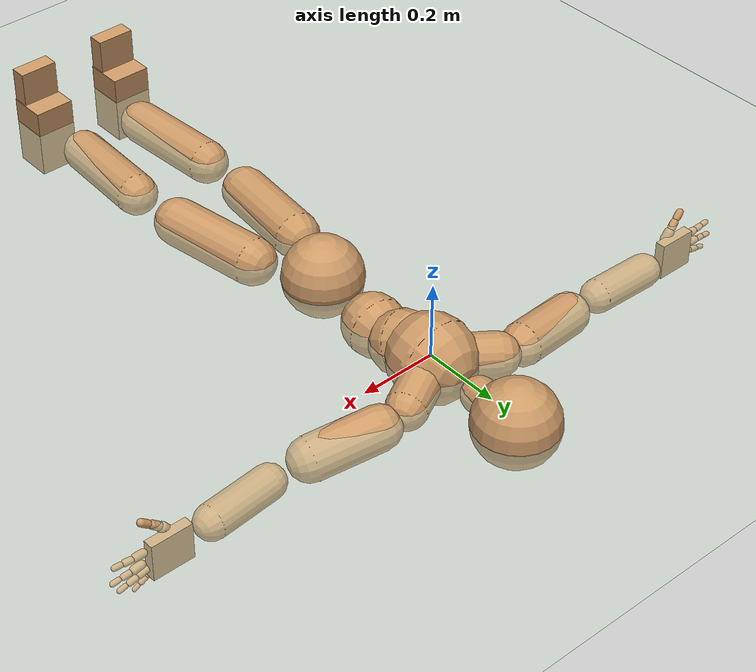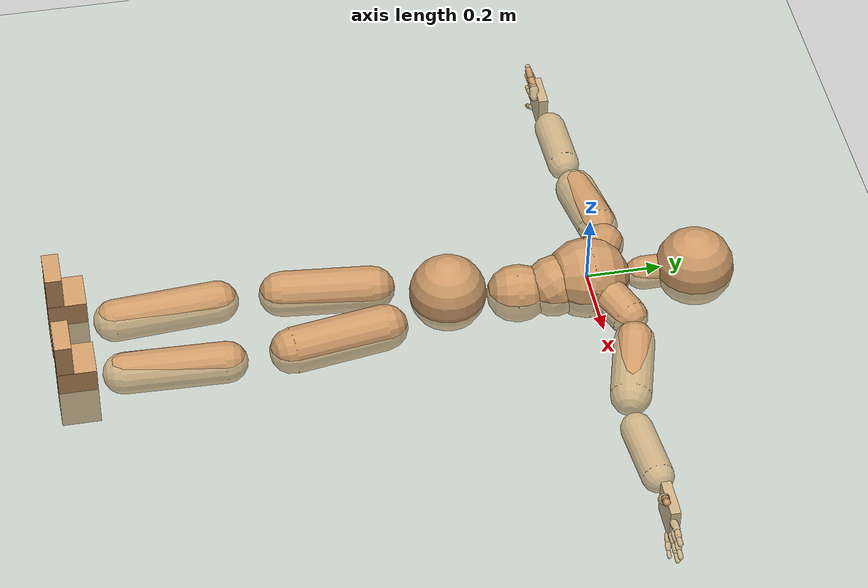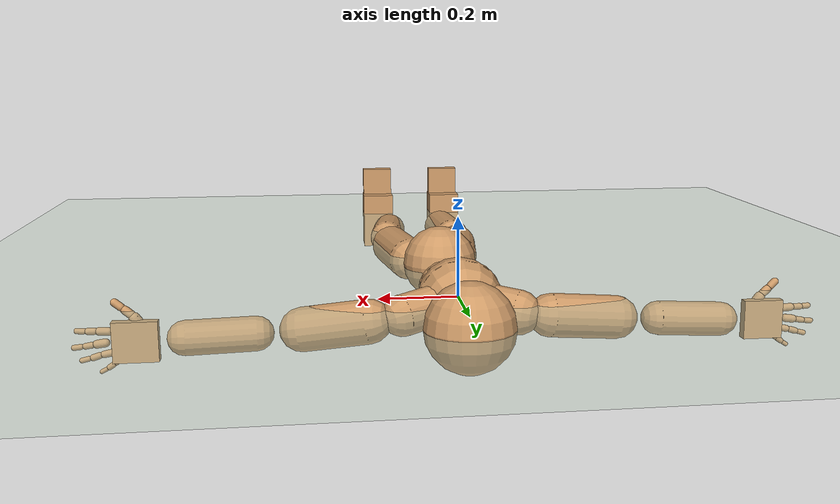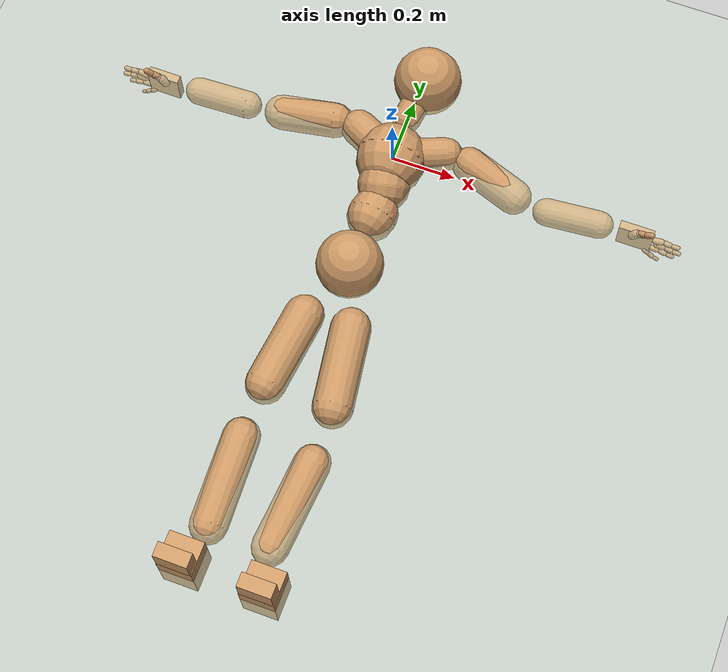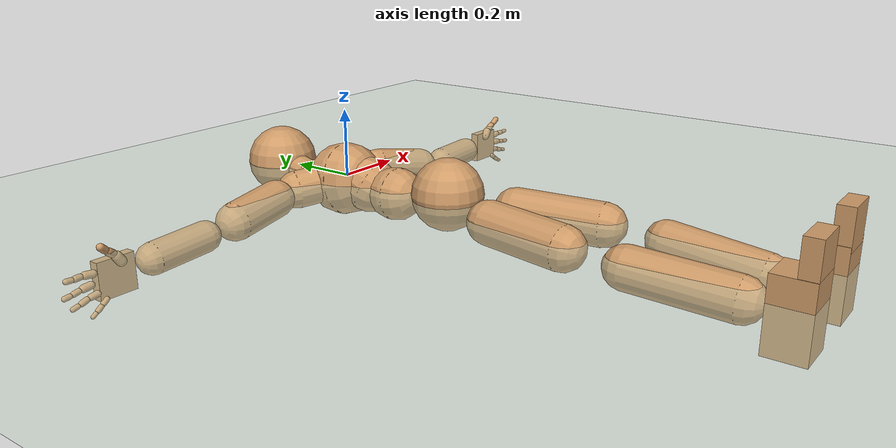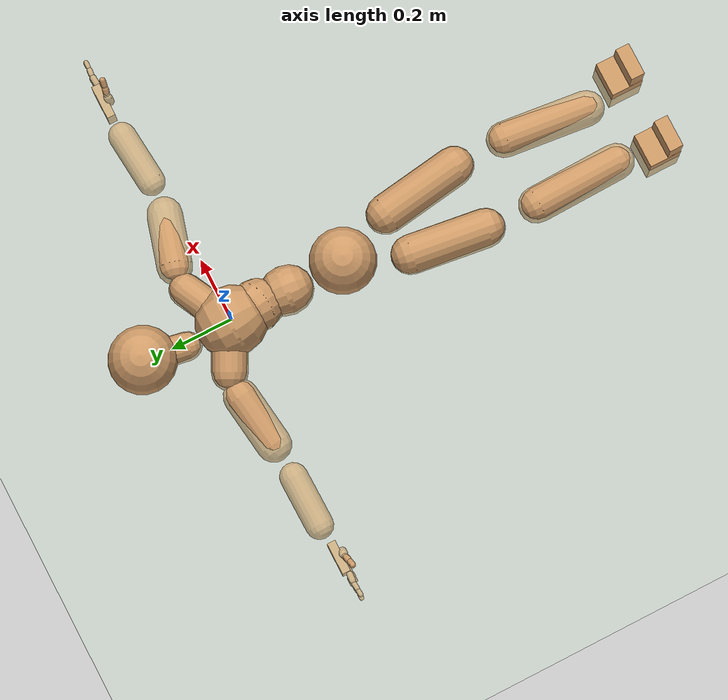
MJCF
<mujoco model="humanoid">
  <compiler coordinate="local"/>
  <default>
    <joint damping="0.0" armature="0.01" stiffness="0.0" limited="true"/>
    <geom conaffinity="1" condim="3" contype="7" margin="0.001" rgba="0.8 0.6 .4 1"/>
  </default>
  <asset>
    <texture type="skybox" builtin="gradient" rgb1=".4 .5 .6" rgb2="0 0 0" width="100" height="100"/>
    <texture builtin="flat" height="1278" mark="cross" markrgb="1 1 1" name="texgeom" random="0.01" rgb1="0.8 0.6 0.4" rgb2="0.8 0.6 0.4" type="cube" width="127"/>
    <texture builtin="checker" height="100" name="texplane" rgb1="0 0 0" rgb2="0.8 0.8 0.8" type="2d" width="100"/>
    <material name="MatPlane" reflectance="0.5" shininess="1" specular="1" texrepeat="60 60" texture="texplane"/>
    <material name="geom" texture="texgeom" texuniform="true"/>
  </asset>
  <worldbody>
    <light cutoff="100" diffuse="1 1 1" dir="-0 0 -1.3" directional="true" exponent="1" pos="0 0 1.3" specular=".1 .1 .1"/>
    <geom conaffinity="1" condim="3" name="floor" pos="0 0 0" rgba="0.8 0.9 0.8 1" size="100 100 .2" type="plane" material="MatPlane"/>
    <body name="Pelvis" pos="0.0028 -0.3762 0.0086">
      <freejoint name="Pelvis"/>
      <geom type="sphere" contype="1" conaffinity="1" density="4629.6296296296305" size="0.1025" pos="0.0000 0.0000 0.0000" name="Pelvis"/>
      <body name="L_Hip" pos="0.0579 -0.0974 -0.0258">
        <joint name="L_Hip_x" type="hinge" pos="0 0 0" axis="1 0 0" user="250 2.5 1 500 10 2" armature="0.01" range="-90.0000 90.0000" damping="0" stiffness="0"/>
        <joint name="L_Hip_y" type="hinge" pos="0 0 0" axis="0 1 0" user="250 2.5 1 500 10 2" armature="0.01" range="-90.0000 90.0000" damping="0" stiffness="0"/>
        <joint name="L_Hip_z" type="hinge" pos="0 0 0" axis="0 0 1" user="250 2.5 1 500 10 2" armature="0.01" range="-90.0000 90.0000" damping="0" stiffness="0"/>
        <geom type="capsule" contype="1" conaffinity="1" density="2040.816327" fromto="0.0123 -0.0831 -0.0012 0.0492 -0.3323 -0.0047" size="0.0612" name="L_Hip"/>
        <body name="L_Knee" pos="0.0615 -0.4154 -0.0058">
          <joint name="L_Knee_x" type="hinge" pos="0 0 0" axis="1 0 0" user="250 2.5 1 500 10 2" armature="0.01" range="-180.0000 180.0000" damping="0" stiffness="0"/>
          <joint name="L_Knee_y" type="hinge" pos="0 0 0" axis="0 1 0" user="250 2.5 1 500 10 2" armature="0.01" range="-5.6250 5.6250" damping="0" stiffness="0"/>
          <joint name="L_Knee_z" type="hinge" pos="0 0 0" axis="0 0 1" user="250 2.5 1 500 10 2" armature="0.01" range="-5.6250 5.6250" damping="0" stiffness="0"/>
          <geom type="capsule" contype="1" conaffinity="1" density="1234.567901" fromto="-0.0087 -0.0893 -0.0064 -0.0348 -0.3570 -0.0255" size="0.0548" name="L_Knee"/>
          <body name="L_Ankle" pos="-0.0435 -0.4463 -0.0318">
            <joint name="L_Ankle_x" type="hinge" pos="0 0 0" axis="1 0 0" user="150 2.5 1 500 10 2" armature="0.01" range="-90.0000 90.0000" damping="0" stiffness="0"/>
            <joint name="L_Ankle_y" type="hinge" pos="0 0 0" axis="0 1 0" user="150 2.5 1 500 10 2" armature="0.01" range="-90.0000 90.0000" damping="0" stiffness="0"/>
            <joint name="L_Ankle_z" type="hinge" pos="0 0 0" axis="0 0 1" user="150 2.5 1 500 10 2" armature="0.01" range="-90.0000 90.0000" damping="0" stiffness="0"/>
            <geom type="box" density="450.710296" pos="0.0433 -0.0333 0.0260" size="0.053 0.0507 0.0933" quat="1.0000 0.0000 0.0000 0.0000" name="L_Ankle"/>
            <body name="L_Toe" pos="0.0502 -0.066 0.129">
              <joint name="L_Toe_x" type="hinge" pos="0 0 0" axis="1 0 0" user="150 1 1 500 1 1" armature="0.01" range="-90.0000 90.0000" damping="0" stiffness="0"/>
              <joint name="L_Toe_y" type="hinge" pos="0 0 0" axis="0 1 0" user="150 1 1 500 1 1" armature="0.01" range="-45.0000 45.0000" damping="0" stiffness="0"/>
              <joint name="L_Toe_z" type="hinge" pos="0 0 0" axis="0 0 1" user="150 1 1 500 1 1" armature="0.01" range="-45.0000 45.0000" damping="0" stiffness="0"/>
              <geom type="box" density="420.494333" pos="-0.0068 0.0038 0.0282" size="0.0508 0.0218 0.0538" quat="1.0000 0.0000 0.0000 0.0000" name="L_Toe"/>
            </body>
          </body>
        </body>
      </body>
      <body name="R_Hip" pos="-0.0628 -0.1102 -0.02">
        <joint name="R_Hip_x" type="hinge" pos="0 0 0" axis="1 0 0" user="250 2.5 1 500 10 2" armature="0.01" range="-90.0000 90.0000" damping="0" stiffness="0"/>
        <joint name="R_Hip_y" type="hinge" pos="0 0 0" axis="0 1 0" user="250 2.5 1 500 10 2" armature="0.01" range="-90.0000 90.0000" damping="0" stiffness="0"/>
        <joint name="R_Hip_z" type="hinge" pos="0 0 0" axis="0 0 1" user="250 2.5 1 500 10 2" armature="0.01" range="-90.0000 90.0000" damping="0" stiffness="0"/>
        <geom type="capsule" contype="1" conaffinity="1" density="2040.816327" fromto="-0.0101 -0.0793 -0.0028 -0.0404 -0.3172 -0.0113" size="0.0604" name="R_Hip"/>
        <body name="R_Knee" pos="-0.0506 -0.3965 -0.0141">
          <joint name="R_Knee_x" type="hinge" pos="0 0 0" axis="1 0 0" user="250 2.5 1 500 10 2" armature="0.01" range="-180.0000 180.0000" damping="0" stiffness="0"/>
          <joint name="R_Knee_y" type="hinge" pos="0 0 0" axis="0 1 0" user="250 2.5 1 500 10 2" armature="0.01" range="-5.6250 5.6250" damping="0" stiffness="0"/>
          <joint name="R_Knee_z" type="hinge" pos="0 0 0" axis="0 0 1" user="250 2.5 1 500 10 2" armature="0.01" range="-5.6250 5.6250" damping="0" stiffness="0"/>
          <geom type="capsule" contype="1" conaffinity="1" density="1234.567901" fromto="0.0029 -0.0911 -0.0039 0.0115 -0.3644 -0.0156" size="0.0564" name="R_Knee"/>
          <body name="R_Ankle" pos="0.0144 -0.4555 -0.0195">
            <joint name="R_Ankle_x" type="hinge" pos="0 0 0" axis="1 0 0" user="150 1 1 500 10 2" armature="0.01" range="-90.0000 90.0000" damping="0" stiffness="0"/>
            <joint name="R_Ankle_y" type="hinge" pos="0 0 0" axis="0 1 0" user="150 1 1 500 10 2" armature="0.01" range="-90.0000 90.0000" damping="0" stiffness="0"/>
            <joint name="R_Ankle_z" type="hinge" pos="0 0 0" axis="0 0 1" user="150 1 1 500 10 2" armature="0.01" range="-90.0000 90.0000" damping="0" stiffness="0"/>
            <geom type="box" density="450.704319" pos="-0.0259 -0.0302 0.0162" size="0.053 0.0507 0.0933" quat="1.0000 0.0000 0.0000 0.0000" name="R_Ankle"/>
            <body name="R_Toe" pos="-0.0411 -0.0656 0.1298">
              <joint name="R_Toe_x" type="hinge" pos="0 0 0" axis="1 0 0" user="150 1 1 500 1 1" armature="0.01" range="-90.0000 90.0000" damping="0" stiffness="0"/>
              <joint name="R_Toe_y" type="hinge" pos="0 0 0" axis="0 1 0" user="150 1 1 500 1 1" armature="0.01" range="-45.0000 45.0000" damping="0" stiffness="0"/>
              <joint name="R_Toe_z" type="hinge" pos="0 0 0" axis="0 0 1" user="150 1 1 500 1 1" armature="0.01" range="-45.0000 45.0000" damping="0" stiffness="0"/>
              <geom type="box" density="420.507686" pos="0.0152 0.0066 0.0176" size="0.0507 0.0218 0.0538" quat="1.0000 0.0000 0.0000 0.0000" name="R_Toe"/>
            </body>
          </body>
        </body>
      </body>
      <body name="Torso" pos="-0.0028 0.1175 -0.0302">
        <joint name="Torso_x" type="hinge" pos="0 0 0" axis="1 0 0" user="500 5 1 500 10 2" armature="0.01" range="-60.0000 60.0000" damping="0" stiffness="0"/>
        <joint name="Torso_y" type="hinge" pos="0 0 0" axis="0 1 0" user="500 5 1 500 10 2" armature="0.01" range="-60.0000 60.0000" damping="0" stiffness="0"/>
        <joint name="Torso_z" type="hinge" pos="0 0 0" axis="0 0 1" user="500 5 1 500 10 2" armature="0.01" range="-60.0000 60.0000" damping="0" stiffness="0"/>
        <geom type="capsule" contype="1" conaffinity="1" density="2040.816327" fromto="0.0046 0.0640 -0.0030 0.0056 0.0782 -0.0036" size="0.0761" name="Torso"/>
        <body name="Spine" pos="0.0103 0.1422 -0.0066">
          <joint name="Spine_x" type="hinge" pos="0 0 0" axis="1 0 0" user="500 5 1 500 10 2" armature="0.01" range="-60.0000 60.0000" damping="0" stiffness="0"/>
          <joint name="Spine_y" type="hinge" pos="0 0 0" axis="0 1 0" user="500 5 1 500 10 2" armature="0.01" range="-60.0000 60.0000" damping="0" stiffness="0"/>
          <joint name="Spine_z" type="hinge" pos="0 0 0" axis="0 0 1" user="500 5 1 500 10 2" armature="0.01" range="-60.0000 60.0000" damping="0" stiffness="0"/>
          <geom type="capsule" contype="1" conaffinity="1" density="2040.816327" fromto="-0.0053 0.0262 0.0119 -0.0065 0.0320 0.0146" size="0.0807" name="Spine"/>
          <body name="Chest" pos="-0.0118 0.0582 0.0265">
            <joint name="Chest_x" type="hinge" pos="0 0 0" axis="1 0 0" user="500 5 1 500 10 2" armature="0.01" range="-60.0000 60.0000" damping="0" stiffness="0"/>
            <joint name="Chest_y" type="hinge" pos="0 0 0" axis="0 1 0" user="500 5 1 500 10 2" armature="0.01" range="-60.0000 60.0000" damping="0" stiffness="0"/>
            <joint name="Chest_z" type="hinge" pos="0 0 0" axis="0 0 1" user="500 5 1 500 10 2" armature="0.01" range="-60.0000 60.0000" damping="0" stiffness="0"/>
            <geom type="capsule" contype="1" conaffinity="1" density="2040.816327" fromto="-0.0021 0.0533 -0.0066 -0.0026 0.0652 -0.0081" size="0.1069" name="Chest"/>
            <body name="Neck" pos="-0.0125 0.1759 -0.0265">
              <joint name="Neck_x" type="hinge" pos="0 0 0" axis="1 0 0" user="150 1 1 250 50 4" armature="0.01" range="-180.0000 180.0000" damping="0" stiffness="0"/>
              <joint name="Neck_y" type="hinge" pos="0 0 0" axis="0 1 0" user="150 1 1 250 50 4" armature="0.01" range="-180.0000 180.0000" damping="0" stiffness="0"/>
              <joint name="Neck_z" type="hinge" pos="0 0 0" axis="0 0 1" user="150 1 1 250 50 4" armature="0.01" range="-180.0000 180.0000" damping="0" stiffness="0"/>
              <geom type="capsule" contype="1" conaffinity="1" density="1000" fromto="0.0052 0.0343 0.0057 0.0209 0.1373 0.0228" size="0.0445" name="Neck"/>
              <body name="Head" pos="0.0261 0.1716 0.0284">
                <joint name="Head_x" type="hinge" pos="0 0 0" axis="1 0 0" user="150 1 1 250 50 4" armature="0.01" range="-90.0000 90.0000" damping="0" stiffness="0"/>
                <joint name="Head_y" type="hinge" pos="0 0 0" axis="0 1 0" user="150 1 1 250 50 4" armature="0.01" range="-90.0000 90.0000" damping="0" stiffness="0"/>
                <joint name="Head_z" type="hinge" pos="0 0 0" axis="0 0 1" user="150 1 1 250 50 4" armature="0.01" range="-90.0000 90.0000" damping="0" stiffness="0"/>
                <geom type="sphere" contype="1" conaffinity="1" density="1000" size="0.1053" pos="0.0000 0.0000 0.0000" name="Head"/>
              </body>
            </body>
            <body name="L_Thorax" pos="0.0473 0.0903 -0.0053">
              <joint name="L_Thorax_x" type="hinge" pos="0 0 0" axis="1 0 0" user="200 2 1 500 50 4" armature="0.01" range="-180.0000 180.0000" damping="0" stiffness="0"/>
              <joint name="L_Thorax_y" type="hinge" pos="0 0 0" axis="0 1 0" user="200 2 1 500 50 4" armature="0.01" range="-180.0000 180.0000" damping="0" stiffness="0"/>
              <joint name="L_Thorax_z" type="hinge" pos="0 0 0" axis="0 0 1" user="200 2 1 500 50 4" armature="0.01" range="-180.0000 180.0000" damping="0" stiffness="0"/>
              <geom type="capsule" contype="1" conaffinity="1" density="1000" fromto="0.0249 0.0121 -0.0037 0.0997 0.0483 -0.0148" size="0.0511" name="L_Thorax"/>
              <body name="L_Shoulder" pos="0.1246 0.0604 -0.0185">
                <joint name="L_Shoulder_x" type="hinge" pos="0 0 0" axis="1 0 0" user="200 2 1 500 50 4" armature="0.01" range="-180.0000 180.0000" damping="0" stiffness="0"/>
                <joint name="L_Shoulder_y" type="hinge" pos="0 0 0" axis="0 1 0" user="200 2 1 500 50 4" armature="0.01" range="-180.0000 180.0000" damping="0" stiffness="0"/>
                <joint name="L_Shoulder_z" type="hinge" pos="0 0 0" axis="0 0 1" user="200 2 1 500 50 4" armature="0.01" range="-180.0000 180.0000" damping="0" stiffness="0"/>
                <geom type="capsule" contype="1" conaffinity="1" density="1000" fromto="0.0535 -0.0151 -0.0087 0.2141 -0.0604 -0.0349" size="0.0543" name="L_Shoulder"/>
                <body name="L_Elbow" pos="0.2676 -0.0755 -0.0437">
                  <joint name="L_Elbow_x" type="hinge" pos="0 0 0" axis="1 0 0" user="150 1 1 150 10 2" armature="0.01" range="-720.0000 720.0000" damping="0" stiffness="0"/>
                  <joint name="L_Elbow_y" type="hinge" pos="0 0 0" axis="0 1 0" user="150 1 1 150 10 2" armature="0.01" range="-720.0000 720.0000" damping="0" stiffness="0"/>
                  <joint name="L_Elbow_z" type="hinge" pos="0 0 0" axis="0 0 1" user="150 1 1 150 10 2" armature="0.01" range="-720.0000 720.0000" damping="0" stiffness="0"/>
                  <geom type="capsule" contype="1" conaffinity="1" density="1000" fromto="0.0553 0.0049 -0.0001 0.2213 0.0198 -0.0004" size="0.0425" name="L_Elbow"/>
                  <body name="L_Wrist" pos="0.2766 0.0247 -0.0005">
                    <joint name="L_Wrist_x" type="hinge" pos="0 0 0" axis="1 0 0" user="100 1 1 150 1 1" armature="0.01" range="-180.0000 180.0000" damping="0" stiffness="0"/>
                    <joint name="L_Wrist_y" type="hinge" pos="0 0 0" axis="0 1 0" user="100 1 1 150 1 1" armature="0.01" range="-180.0000 180.0000" damping="0" stiffness="0"/>
                    <joint name="L_Wrist_z" type="hinge" pos="0 0 0" axis="0 0 1" user="100 1 1 150 1 1" armature="0.01" range="-180.0000 180.0000" damping="0" stiffness="0"/>
                    <geom type="box" density="1209.74811" pos="0.0581 -0.0017 -0.0031" size="0.0535 0.0131 0.0492" quat="1.0000 0.0000 0.0000 0.0000" name="L_Wrist"/>
                    <body name="L_Index1" pos="0.1129 -0.0087 0.0208">
                      <joint name="L_Index1_x" type="hinge" pos="0 0 0" axis="1 0 0" user="100 10 1 150" armature="0.01" range="-180.0000 180.0000" damping="0" stiffness="0"/>
                      <joint name="L_Index1_y" type="hinge" pos="0 0 0" axis="0 1 0" user="100 10 1 150" armature="0.01" range="-180.0000 180.0000" damping="0" stiffness="0"/>
                      <joint name="L_Index1_z" type="hinge" pos="0 0 0" axis="0 0 1" user="100 10 1 150" armature="0.01" range="-180.0000 180.0000" damping="0" stiffness="0"/>
                      <geom type="capsule" contype="1" conaffinity="1" density="1000" fromto="0.0068 0.0005 0.0006 0.0272 0.0020 0.0024" size="0.0098" name="L_Index1"/>
                      <body name="L_Index2" pos="0.034 0.0025 0.0029">
                        <joint name="L_Index2_x" type="hinge" pos="0 0 0" axis="1 0 0" user="100 10 1 150" armature="0.01" range="-180.0000 180.0000" damping="0" stiffness="0"/>
                        <joint name="L_Index2_y" type="hinge" pos="0 0 0" axis="0 1 0" user="100 10 1 150" armature="0.01" range="-180.0000 180.0000" damping="0" stiffness="0"/>
                        <joint name="L_Index2_z" type="hinge" pos="0 0 0" axis="0 0 1" user="100 10 1 150" armature="0.01" range="-180.0000 180.0000" damping="0" stiffness="0"/>
                        <geom type="capsule" contype="1" conaffinity="1" density="1000" fromto="0.0048 -0.0005 -0.0000 0.0192 -0.0021 -0.0002" size="0.0081" name="L_Index2"/>
                        <body name="L_Index3" pos="0.024 -0.0026 -0.0002">
                          <joint name="L_Index3_x" type="hinge" pos="0 0 0" axis="1 0 0" user="100 10 1 150" armature="0.01" range="-180.0000 180.0000" damping="0" stiffness="0"/>
                          <joint name="L_Index3_y" type="hinge" pos="0 0 0" axis="0 1 0" user="100 10 1 150" armature="0.01" range="-180.0000 180.0000" damping="0" stiffness="0"/>
                          <joint name="L_Index3_z" type="hinge" pos="0 0 0" axis="0 0 1" user="100 10 1 150" armature="0.01" range="-180.0000 180.0000" damping="0" stiffness="0"/>
                          <geom type="capsule" contype="1" conaffinity="1" density="1000" fromto="0.0052 -0.0001 0.0004 0.0208 -0.0005 0.0014" size="0.0069" name="L_Index3"/>
                        </body>
                      </body>
                    </body>
                    <body name="L_Middle1" pos="0.1212 -0.0063 -0.0043">
                      <joint name="L_Middle1_x" type="hinge" pos="0 0 0" axis="1 0 0" user="100 10 1 150" armature="0.01" range="-180.0000 180.0000" damping="0" stiffness="0"/>
                      <joint name="L_Middle1_y" type="hinge" pos="0 0 0" axis="0 1 0" user="100 10 1 150" armature="0.01" range="-180.0000 180.0000" damping="0" stiffness="0"/>
                      <joint name="L_Middle1_z" type="hinge" pos="0 0 0" axis="0 0 1" user="100 10 1 150" armature="0.01" range="-180.0000 180.0000" damping="0" stiffness="0"/>
                      <geom type="capsule" contype="1" conaffinity="1" density="1000" fromto="0.0065 0.0002 -0.0009 0.0261 0.0006 -0.0034" size="0.01" name="L_Middle1"/>
                      <body name="L_Middle2" pos="0.0326 0.0008 -0.0043">
                        <joint name="L_Middle2_x" type="hinge" pos="0 0 0" axis="1 0 0" user="100 10 1 150" armature="0.01" range="-180.0000 180.0000" damping="0" stiffness="0"/>
                        <joint name="L_Middle2_y" type="hinge" pos="0 0 0" axis="0 1 0" user="100 10 1 150" armature="0.01" range="-180.0000 180.0000" damping="0" stiffness="0"/>
                        <joint name="L_Middle2_z" type="hinge" pos="0 0 0" axis="0 0 1" user="100 10 1 150" armature="0.01" range="-180.0000 180.0000" damping="0" stiffness="0"/>
                        <geom type="capsule" contype="1" conaffinity="1" density="1000" fromto="0.0050 -0.0005 -0.0009 0.0200 -0.0018 -0.0036" size="0.0075" name="L_Middle2"/>
                        <body name="L_Middle3" pos="0.025 -0.0023 -0.0045">
                          <joint name="L_Middle3_x" type="hinge" pos="0 0 0" axis="1 0 0" user="100 10 1 150" armature="0.01" range="-180.0000 180.0000" damping="0" stiffness="0"/>
                          <joint name="L_Middle3_y" type="hinge" pos="0 0 0" axis="0 1 0" user="100 10 1 150" armature="0.01" range="-180.0000 180.0000" damping="0" stiffness="0"/>
                          <joint name="L_Middle3_z" type="hinge" pos="0 0 0" axis="0 0 1" user="100 10 1 150" armature="0.01" range="-180.0000 180.0000" damping="0" stiffness="0"/>
                          <geom type="capsule" contype="1" conaffinity="1" density="1000" fromto="0.0054 -0.0001 -0.0005 0.0216 -0.0002 -0.0020" size="0.0066" name="L_Middle3"/>
                        </body>
                      </body>
                    </body>
                    <body name="L_Pinky1" pos="0.0941 -0.015 -0.0469">
                      <joint name="L_Pinky1_x" type="hinge" pos="0 0 0" axis="1 0 0" user="100 10 1 150" armature="0.01" range="-180.0000 180.0000" damping="0" stiffness="0"/>
                      <joint name="L_Pinky1_y" type="hinge" pos="0 0 0" axis="0 1 0" user="100 10 1 150" armature="0.01" range="-180.0000 180.0000" damping="0" stiffness="0"/>
                      <joint name="L_Pinky1_z" type="hinge" pos="0 0 0" axis="0 0 1" user="100 10 1 150" armature="0.01" range="-180.0000 180.0000" damping="0" stiffness="0"/>
                      <geom type="capsule" contype="1" conaffinity="1" density="1000" fromto="0.0034 -0.0003 -0.0025 0.0136 -0.0010 -0.0102" size="0.0071" name="L_Pinky1"/>
                      <body name="L_Pinky2" pos="0.0171 -0.0013 -0.0127">
                        <joint name="L_Pinky2_x" type="hinge" pos="0 0 0" axis="1 0 0" user="100 10 1 150" armature="0.01" range="-180.0000 180.0000" damping="0" stiffness="0"/>
                        <joint name="L_Pinky2_y" type="hinge" pos="0 0 0" axis="0 1 0" user="100 10 1 150" armature="0.01" range="-180.0000 180.0000" damping="0" stiffness="0"/>
                        <joint name="L_Pinky2_z" type="hinge" pos="0 0 0" axis="0 0 1" user="100 10 1 150" armature="0.01" range="-180.0000 180.0000" damping="0" stiffness="0"/>
                        <geom type="capsule" contype="1" conaffinity="1" density="1000" fromto="0.0033 -0.0004 -0.0023 0.0134 -0.0015 -0.0094" size="0.0068" name="L_Pinky2"/>
                        <body name="L_Pinky3" pos="0.0167 -0.0019 -0.0117">
                          <joint name="L_Pinky3_x" type="hinge" pos="0 0 0" axis="1 0 0" user="100 10 1 150" armature="0.01" range="-180.0000 180.0000" damping="0" stiffness="0"/>
                          <joint name="L_Pinky3_y" type="hinge" pos="0 0 0" axis="0 1 0" user="100 10 1 150" armature="0.01" range="-180.0000 180.0000" damping="0" stiffness="0"/>
                          <joint name="L_Pinky3_z" type="hinge" pos="0 0 0" axis="0 0 1" user="100 10 1 150" armature="0.01" range="-180.0000 180.0000" damping="0" stiffness="0"/>
                          <geom type="capsule" contype="1" conaffinity="1" density="1000" fromto="0.0037 0.0000 -0.0019 0.0150 0.0001 -0.0078" size="0.0052" name="L_Pinky3"/>
                        </body>
                      </body>
                    </body>
                    <body name="L_Ring1" pos="0.1086 -0.0094 -0.0294">
                      <joint name="L_Ring1_x" type="hinge" pos="0 0 0" axis="1 0 0" user="100 10 1 150" armature="0.01" range="-180.0000 180.0000" damping="0" stiffness="0"/>
                      <joint name="L_Ring1_y" type="hinge" pos="0 0 0" axis="0 1 0" user="100 10 1 150" armature="0.01" range="-180.0000 180.0000" damping="0" stiffness="0"/>
                      <joint name="L_Ring1_z" type="hinge" pos="0 0 0" axis="0 0 1" user="100 10 1 150" armature="0.01" range="-180.0000 180.0000" damping="0" stiffness="0"/>
                      <geom type="capsule" contype="1" conaffinity="1" density="1000" fromto="0.0061 0.0003 -0.0011 0.0242 0.0012 -0.0045" size="0.0085" name="L_Ring1"/>
                      <body name="L_Ring2" pos="0.0303 0.0016 -0.0056">
                        <joint name="L_Ring2_x" type="hinge" pos="0 0 0" axis="1 0 0" user="100 10 1 150" armature="0.01" range="-180.0000 180.0000" damping="0" stiffness="0"/>
                        <joint name="L_Ring2_y" type="hinge" pos="0 0 0" axis="0 1 0" user="100 10 1 150" armature="0.01" range="-180.0000 180.0000" damping="0" stiffness="0"/>
                        <joint name="L_Ring2_z" type="hinge" pos="0 0 0" axis="0 0 1" user="100 10 1 150" armature="0.01" range="-180.0000 180.0000" damping="0" stiffness="0"/>
                        <geom type="capsule" contype="1" conaffinity="1" density="1000" fromto="0.0049 -0.0003 -0.0015 0.0195 -0.0013 -0.0061" size="0.0079" name="L_Ring2"/>
                        <body name="L_Ring3" pos="0.0244 -0.0017 -0.0076">
                          <joint name="L_Ring3_x" type="hinge" pos="0 0 0" axis="1 0 0" user="100 10 1 150" armature="0.01" range="-180.0000 180.0000" damping="0" stiffness="0"/>
                          <joint name="L_Ring3_y" type="hinge" pos="0 0 0" axis="0 1 0" user="100 10 1 150" armature="0.01" range="-180.0000 180.0000" damping="0" stiffness="0"/>
                          <joint name="L_Ring3_z" type="hinge" pos="0 0 0" axis="0 0 1" user="100 10 1 150" armature="0.01" range="-180.0000 180.0000" damping="0" stiffness="0"/>
                          <geom type="capsule" contype="1" conaffinity="1" density="1000" fromto="0.0053 0.0001 -0.0011 0.0211 0.0003 -0.0045" size="0.0062" name="L_Ring3"/>
                        </body>
                      </body>
                    </body>
                    <body name="L_Thumb1" pos="0.046 -0.0195 0.0281">
                      <joint name="L_Thumb1_x" type="hinge" pos="0 0 0" axis="1 0 0" user="100 10 1 150" armature="0.01" range="-180.0000 180.0000" damping="0" stiffness="0"/>
                      <joint name="L_Thumb1_y" type="hinge" pos="0 0 0" axis="0 1 0" user="100 10 1 150" armature="0.01" range="-180.0000 180.0000" damping="0" stiffness="0"/>
                      <joint name="L_Thumb1_z" type="hinge" pos="0 0 0" axis="0 0 1" user="100 10 1 150" armature="0.01" range="-180.0000 180.0000" damping="0" stiffness="0"/>
                      <geom type="capsule" contype="1" conaffinity="1" density="1000" fromto="0.0037 0.0002 0.0054 0.0149 0.0008 0.0216" size="0.0131" name="L_Thumb1"/>
                      <body name="L_Thumb2" pos="0.0186 0.001 0.027">
                        <joint name="L_Thumb2_x" type="hinge" pos="0 0 0" axis="1 0 0" user="100 10 1 150" armature="0.01" range="-180.0000 180.0000" damping="0" stiffness="0"/>
                        <joint name="L_Thumb2_y" type="hinge" pos="0 0 0" axis="0 1 0" user="100 10 1 150" armature="0.01" range="-180.0000 180.0000" damping="0" stiffness="0"/>
                        <joint name="L_Thumb2_z" type="hinge" pos="0 0 0" axis="0 0 1" user="100 10 1 150" armature="0.01" range="-180.0000 180.0000" damping="0" stiffness="0"/>
                        <geom type="capsule" contype="1" conaffinity="1" density="1000" fromto="0.0045 -0.0011 0.0033 0.0179 -0.0043 0.0133" size="0.0103" name="L_Thumb2"/>
                        <body name="L_Thumb3" pos="0.0224 -0.0054 0.0166">
                          <joint name="L_Thumb3_x" type="hinge" pos="0 0 0" axis="1 0 0" user="100 10 1 150" armature="0.01" range="-180.0000 180.0000" damping="0" stiffness="0"/>
                          <joint name="L_Thumb3_y" type="hinge" pos="0 0 0" axis="0 1 0" user="100 10 1 150" armature="0.01" range="-180.0000 180.0000" damping="0" stiffness="0"/>
                          <joint name="L_Thumb3_z" type="hinge" pos="0 0 0" axis="0 0 1" user="100 10 1 150" armature="0.01" range="-180.0000 180.0000" damping="0" stiffness="0"/>
                          <geom type="capsule" contype="1" conaffinity="1" density="1000" fromto="0.0049 -0.0007 0.0037 0.0195 -0.0027 0.0149" size="0.0094" name="L_Thumb3"/>
                        </body>
                      </body>
                    </body>
                  </body>
                </body>
              </body>
            </body>
            <body name="R_Thorax" pos="-0.0487 0.0892 -0.0122">
              <joint name="R_Thorax_x" type="hinge" pos="0 0 0" axis="1 0 0" user="200 2 1 150 10 2" armature="0.01" range="-180.0000 180.0000" damping="0" stiffness="0"/>
              <joint name="R_Thorax_y" type="hinge" pos="0 0 0" axis="0 1 0" user="200 2 1 150 10 2" armature="0.01" range="-180.0000 180.0000" damping="0" stiffness="0"/>
              <joint name="R_Thorax_z" type="hinge" pos="0 0 0" axis="0 0 1" user="200 2 1 150 10 2" armature="0.01" range="-180.0000 180.0000" damping="0" stiffness="0"/>
              <geom type="capsule" contype="1" conaffinity="1" density="1000" fromto="-0.0216 0.0112 -0.0028 -0.0865 0.0449 -0.0113" size="0.0561" name="R_Thorax"/>
              <body name="R_Shoulder" pos="-0.1082 0.0561 -0.0142">
                <joint name="R_Shoulder_x" type="hinge" pos="0 0 0" axis="1 0 0" user="200 2 1 250 10 2" armature="0.01" range="-180.0000 180.0000" damping="0" stiffness="0"/>
                <joint name="R_Shoulder_y" type="hinge" pos="0 0 0" axis="0 1 0" user="200 2 1 250 10 2" armature="0.01" range="-180.0000 180.0000" damping="0" stiffness="0"/>
                <joint name="R_Shoulder_z" type="hinge" pos="0 0 0" axis="0 0 1" user="200 2 1 250 10 2" armature="0.01" range="-180.0000 180.0000" damping="0" stiffness="0"/>
                <geom type="capsule" contype="1" conaffinity="1" density="1000" fromto="-0.0571 -0.0076 -0.0056 -0.2284 -0.0303 -0.0226" size="0.0542" name="R_Shoulder"/>
                <body name="R_Elbow" pos="-0.2855 -0.0379 -0.0282">
                  <joint name="R_Elbow_x" type="hinge" pos="0 0 0" axis="1 0 0" user="150 1 1 150 10 2" armature="0.01" range="-720.0000 720.0000" damping="0" stiffness="0"/>
                  <joint name="R_Elbow_y" type="hinge" pos="0 0 0" axis="0 1 0" user="150 1 1 150 10 2" armature="0.01" range="-720.0000 720.0000" damping="0" stiffness="0"/>
                  <joint name="R_Elbow_z" type="hinge" pos="0 0 0" axis="0 0 1" user="150 1 1 150 10 2" armature="0.01" range="-720.0000 720.0000" damping="0" stiffness="0"/>
                  <geom type="capsule" contype="1" conaffinity="1" density="1000" fromto="-0.0546 -0.0008 -0.0028 -0.2184 -0.0033 -0.0112" size="0.0429" name="R_Elbow"/>
                  <body name="R_Wrist" pos="-0.273 -0.0042 -0.014">
                    <joint name="R_Wrist_x" type="hinge" pos="0 0 0" axis="1 0 0" user="100 1 1 150 1 1" armature="0.01" range="-180.0000 180.0000" damping="0" stiffness="0"/>
                    <joint name="R_Wrist_y" type="hinge" pos="0 0 0" axis="0 1 0" user="100 1 1 150 1 1" armature="0.01" range="-180.0000 180.0000" damping="0" stiffness="0"/>
                    <joint name="R_Wrist_z" type="hinge" pos="0 0 0" axis="0 0 1" user="100 1 1 150 1 1" armature="0.01" range="-180.0000 180.0000" damping="0" stiffness="0"/>
                    <geom type="box" density="1233.547171" pos="-0.0593 -0.0051 -0.0025" size="0.0505 0.0131 0.0492" quat="1.0000 0.0000 0.0000 0.0000" name="R_Wrist"/>
                    <body name="R_Index1" pos="-0.1107 -0.0121 0.0214">
                      <joint name="R_Index1_x" type="hinge" pos="0 0 0" axis="1 0 0" user="100 10 1 150" armature="0.01" range="-180.0000 180.0000" damping="0" stiffness="0"/>
                      <joint name="R_Index1_y" type="hinge" pos="0 0 0" axis="0 1 0" user="100 10 1 150" armature="0.01" range="-180.0000 180.0000" damping="0" stiffness="0"/>
                      <joint name="R_Index1_z" type="hinge" pos="0 0 0" axis="0 0 1" user="100 10 1 150" armature="0.01" range="-180.0000 180.0000" damping="0" stiffness="0"/>
                      <geom type="capsule" contype="1" conaffinity="1" density="1000" fromto="-0.0068 0.0005 0.0006 -0.0272 0.0020 0.0024" size="0.0098" name="R_Index1"/>
                      <body name="R_Index2" pos="-0.034 0.0025 0.0029">
                        <joint name="R_Index2_x" type="hinge" pos="0 0 0" axis="1 0 0" user="100 10 1 150" armature="0.01" range="-180.0000 180.0000" damping="0" stiffness="0"/>
                        <joint name="R_Index2_y" type="hinge" pos="0 0 0" axis="0 1 0" user="100 10 1 150" armature="0.01" range="-180.0000 180.0000" damping="0" stiffness="0"/>
                        <joint name="R_Index2_z" type="hinge" pos="0 0 0" axis="0 0 1" user="100 10 1 150" armature="0.01" range="-180.0000 180.0000" damping="0" stiffness="0"/>
                        <geom type="capsule" contype="1" conaffinity="1" density="1000" fromto="-0.0048 -0.0005 -0.0000 -0.0192 -0.0021 -0.0002" size="0.0081" name="R_Index2"/>
                        <body name="R_Index3" pos="-0.024 -0.0026 -0.0002">
                          <joint name="R_Index3_x" type="hinge" pos="0 0 0" axis="1 0 0" user="100 10 1 150" armature="0.01" range="-180.0000 180.0000" damping="0" stiffness="0"/>
                          <joint name="R_Index3_y" type="hinge" pos="0 0 0" axis="0 1 0" user="100 10 1 150" armature="0.01" range="-180.0000 180.0000" damping="0" stiffness="0"/>
                          <joint name="R_Index3_z" type="hinge" pos="0 0 0" axis="0 0 1" user="100 10 1 150" armature="0.01" range="-180.0000 180.0000" damping="0" stiffness="0"/>
                          <geom type="capsule" contype="1" conaffinity="1" density="1000" fromto="-0.0044 -0.0001 0.0004 -0.0176 -0.0005 0.0014" size="0.0072" name="R_Index3"/>
                        </body>
                      </body>
                    </body>
                    <body name="R_Middle1" pos="-0.1191 -0.0097 -0.0038">
                      <joint name="R_Middle1_x" type="hinge" pos="0 0 0" axis="1 0 0" user="100 10 1 150" armature="0.01" range="-180.0000 180.0000" damping="0" stiffness="0"/>
                      <joint name="R_Middle1_y" type="hinge" pos="0 0 0" axis="0 1 0" user="100 10 1 150" armature="0.01" range="-180.0000 180.0000" damping="0" stiffness="0"/>
                      <joint name="R_Middle1_z" type="hinge" pos="0 0 0" axis="0 0 1" user="100 10 1 150" armature="0.01" range="-180.0000 180.0000" damping="0" stiffness="0"/>
                      <geom type="capsule" contype="1" conaffinity="1" density="1000" fromto="-0.0065 0.0002 -0.0009 -0.0261 0.0006 -0.0034" size="0.01" name="R_Middle1"/>
                      <body name="R_Middle2" pos="-0.0326 0.0008 -0.0043">
                        <joint name="R_Middle2_x" type="hinge" pos="0 0 0" axis="1 0 0" user="100 10 1 150" armature="0.01" range="-180.0000 180.0000" damping="0" stiffness="0"/>
                        <joint name="R_Middle2_y" type="hinge" pos="0 0 0" axis="0 1 0" user="100 10 1 150" armature="0.01" range="-180.0000 180.0000" damping="0" stiffness="0"/>
                        <joint name="R_Middle2_z" type="hinge" pos="0 0 0" axis="0 0 1" user="100 10 1 150" armature="0.01" range="-180.0000 180.0000" damping="0" stiffness="0"/>
                        <geom type="capsule" contype="1" conaffinity="1" density="1000" fromto="-0.0050 -0.0005 -0.0009 -0.0200 -0.0018 -0.0036" size="0.0075" name="R_Middle2"/>
                        <body name="R_Middle3" pos="-0.025 -0.0023 -0.0045">
                          <joint name="R_Middle3_x" type="hinge" pos="0 0 0" axis="1 0 0" user="100 10 1 150" armature="0.01" range="-180.0000 180.0000" damping="0" stiffness="0"/>
                          <joint name="R_Middle3_y" type="hinge" pos="0 0 0" axis="0 1 0" user="100 10 1 150" armature="0.01" range="-180.0000 180.0000" damping="0" stiffness="0"/>
                          <joint name="R_Middle3_z" type="hinge" pos="0 0 0" axis="0 0 1" user="100 10 1 150" armature="0.01" range="-180.0000 180.0000" damping="0" stiffness="0"/>
                          <geom type="capsule" contype="1" conaffinity="1" density="1000" fromto="-0.0046 -0.0001 -0.0005 -0.0184 -0.0002 -0.0020" size="0.0069" name="R_Middle3"/>
                        </body>
                      </body>
                    </body>
                    <body name="R_Pinky1" pos="-0.092 -0.0184 -0.0463">
                      <joint name="R_Pinky1_x" type="hinge" pos="0 0 0" axis="1 0 0" user="100 10 1 150" armature="0.01" range="-180.0000 180.0000" damping="0" stiffness="0"/>
                      <joint name="R_Pinky1_y" type="hinge" pos="0 0 0" axis="0 1 0" user="100 10 1 150" armature="0.01" range="-180.0000 180.0000" damping="0" stiffness="0"/>
                      <joint name="R_Pinky1_z" type="hinge" pos="0 0 0" axis="0 0 1" user="100 10 1 150" armature="0.01" range="-180.0000 180.0000" damping="0" stiffness="0"/>
                      <geom type="capsule" contype="1" conaffinity="1" density="1000" fromto="-0.0034 -0.0003 -0.0025 -0.0136 -0.0010 -0.0102" size="0.0071" name="R_Pinky1"/>
                      <body name="R_Pinky2" pos="-0.0171 -0.0013 -0.0127">
                        <joint name="R_Pinky2_x" type="hinge" pos="0 0 0" axis="1 0 0" user="100 10 1 150" armature="0.01" range="-180.0000 180.0000" damping="0" stiffness="0"/>
                        <joint name="R_Pinky2_y" type="hinge" pos="0 0 0" axis="0 1 0" user="100 10 1 150" armature="0.01" range="-180.0000 180.0000" damping="0" stiffness="0"/>
                        <joint name="R_Pinky2_z" type="hinge" pos="0 0 0" axis="0 0 1" user="100 10 1 150" armature="0.01" range="-180.0000 180.0000" damping="0" stiffness="0"/>
                        <geom type="capsule" contype="1" conaffinity="1" density="1000" fromto="-0.0033 -0.0004 -0.0023 -0.0134 -0.0015 -0.0094" size="0.0068" name="R_Pinky2"/>
                        <body name="R_Pinky3" pos="-0.0167 -0.0019 -0.0117">
                          <joint name="R_Pinky3_x" type="hinge" pos="0 0 0" axis="1 0 0" user="100 10 1 150" armature="0.01" range="-180.0000 180.0000" damping="0" stiffness="0"/>
                          <joint name="R_Pinky3_y" type="hinge" pos="0 0 0" axis="0 1 0" user="100 10 1 150" armature="0.01" range="-180.0000 180.0000" damping="0" stiffness="0"/>
                          <joint name="R_Pinky3_z" type="hinge" pos="0 0 0" axis="0 0 1" user="100 10 1 150" armature="0.01" range="-180.0000 180.0000" damping="0" stiffness="0"/>
                          <geom type="capsule" contype="1" conaffinity="1" density="1000" fromto="-0.0029 0.0000 -0.0019 -0.0118 0.0001 -0.0078" size="0.0055" name="R_Pinky3"/>
                        </body>
                      </body>
                    </body>
                    <body name="R_Ring1" pos="-0.1064 -0.0128 -0.0288">
                      <joint name="R_Ring1_x" type="hinge" pos="0 0 0" axis="1 0 0" user="100 10 1 150" armature="0.01" range="-180.0000 180.0000" damping="0" stiffness="0"/>
                      <joint name="R_Ring1_y" type="hinge" pos="0 0 0" axis="0 1 0" user="100 10 1 150" armature="0.01" range="-180.0000 180.0000" damping="0" stiffness="0"/>
                      <joint name="R_Ring1_z" type="hinge" pos="0 0 0" axis="0 0 1" user="100 10 1 150" armature="0.01" range="-180.0000 180.0000" damping="0" stiffness="0"/>
                      <geom type="capsule" contype="1" conaffinity="1" density="1000" fromto="-0.0061 0.0003 -0.0011 -0.0242 0.0012 -0.0045" size="0.0085" name="R_Ring1"/>
                      <body name="R_Ring2" pos="-0.0303 0.0016 -0.0056">
                        <joint name="R_Ring2_x" type="hinge" pos="0 0 0" axis="1 0 0" user="100 10 1 150" armature="0.01" range="-180.0000 180.0000" damping="0" stiffness="0"/>
                        <joint name="R_Ring2_y" type="hinge" pos="0 0 0" axis="0 1 0" user="100 10 1 150" armature="0.01" range="-180.0000 180.0000" damping="0" stiffness="0"/>
                        <joint name="R_Ring2_z" type="hinge" pos="0 0 0" axis="0 0 1" user="100 10 1 150" armature="0.01" range="-180.0000 180.0000" damping="0" stiffness="0"/>
                        <geom type="capsule" contype="1" conaffinity="1" density="1000" fromto="-0.0049 -0.0003 -0.0015 -0.0195 -0.0013 -0.0061" size="0.0079" name="R_Ring2"/>
                        <body name="R_Ring3" pos="-0.0244 -0.0017 -0.0076">
                          <joint name="R_Ring3_x" type="hinge" pos="0 0 0" axis="1 0 0" user="100 10 1 150" armature="0.01" range="-180.0000 180.0000" damping="0" stiffness="0"/>
                          <joint name="R_Ring3_y" type="hinge" pos="0 0 0" axis="0 1 0" user="100 10 1 150" armature="0.01" range="-180.0000 180.0000" damping="0" stiffness="0"/>
                          <joint name="R_Ring3_z" type="hinge" pos="0 0 0" axis="0 0 1" user="100 10 1 150" armature="0.01" range="-180.0000 180.0000" damping="0" stiffness="0"/>
                          <geom type="capsule" contype="1" conaffinity="1" density="1000" fromto="-0.0045 0.0001 -0.0011 -0.0179 0.0003 -0.0045" size="0.0064" name="R_Ring3"/>
                        </body>
                      </body>
                    </body>
                    <body name="R_Thumb1" pos="-0.0438 -0.0229 0.0287">
                      <joint name="R_Thumb1_x" type="hinge" pos="0 0 0" axis="1 0 0" user="100 10 1 150" armature="0.01" range="-180.0000 180.0000" damping="0" stiffness="0"/>
                      <joint name="R_Thumb1_y" type="hinge" pos="0 0 0" axis="0 1 0" user="100 10 1 150" armature="0.01" range="-180.0000 180.0000" damping="0" stiffness="0"/>
                      <joint name="R_Thumb1_z" type="hinge" pos="0 0 0" axis="0 0 1" user="100 10 1 150" armature="0.01" range="-180.0000 180.0000" damping="0" stiffness="0"/>
                      <geom type="capsule" contype="1" conaffinity="1" density="1000" fromto="-0.0037 0.0002 0.0054 -0.0149 0.0008 0.0216" size="0.0131" name="R_Thumb1"/>
                      <body name="R_Thumb2" pos="-0.0186 0.001 0.027">
                        <joint name="R_Thumb2_x" type="hinge" pos="0 0 0" axis="1 0 0" user="100 10 1 150" armature="0.01" range="-180.0000 180.0000" damping="0" stiffness="0"/>
                        <joint name="R_Thumb2_y" type="hinge" pos="0 0 0" axis="0 1 0" user="100 10 1 150" armature="0.01" range="-180.0000 180.0000" damping="0" stiffness="0"/>
                        <joint name="R_Thumb2_z" type="hinge" pos="0 0 0" axis="0 0 1" user="100 10 1 150" armature="0.01" range="-180.0000 180.0000" damping="0" stiffness="0"/>
                        <geom type="capsule" contype="1" conaffinity="1" density="1000" fromto="-0.0045 -0.0011 0.0033 -0.0179 -0.0043 0.0133" size="0.0103" name="R_Thumb2"/>
                        <body name="R_Thumb3" pos="-0.0224 -0.0054 0.0166">
                          <joint name="R_Thumb3_x" type="hinge" pos="0 0 0" axis="1 0 0" user="100 10 1 150" armature="0.01" range="-180.0000 180.0000" damping="0" stiffness="0"/>
                          <joint name="R_Thumb3_y" type="hinge" pos="0 0 0" axis="0 1 0" user="100 10 1 150" armature="0.01" range="-180.0000 180.0000" damping="0" stiffness="0"/>
                          <joint name="R_Thumb3_z" type="hinge" pos="0 0 0" axis="0 0 1" user="100 10 1 150" armature="0.01" range="-180.0000 180.0000" damping="0" stiffness="0"/>
                          <geom type="capsule" contype="1" conaffinity="1" density="1000" fromto="-0.0041 -0.0007 0.0037 -0.0163 -0.0027 0.0149" size="0.0096" name="R_Thumb3"/>
                        </body>
                      </body>
                    </body>
                  </body>
                </body>
              </body>
            </body>
          </body>
        </body>
      </body>
    </body>
  </worldbody>
  <actuator>
    <motor name="L_Hip_x" joint="L_Hip_x" gear="1"/>
    <motor name="L_Hip_y" joint="L_Hip_y" gear="1"/>
    <motor name="L_Hip_z" joint="L_Hip_z" gear="1"/>
    <motor name="L_Knee_x" joint="L_Knee_x" gear="1"/>
    <motor name="L_Knee_y" joint="L_Knee_y" gear="1"/>
    <motor name="L_Knee_z" joint="L_Knee_z" gear="1"/>
    <motor name="L_Ankle_x" joint="L_Ankle_x" gear="1"/>
    <motor name="L_Ankle_y" joint="L_Ankle_y" gear="1"/>
    <motor name="L_Ankle_z" joint="L_Ankle_z" gear="1"/>
    <motor name="L_Toe_x" joint="L_Toe_x" gear="1"/>
    <motor name="L_Toe_y" joint="L_Toe_y" gear="1"/>
    <motor name="L_Toe_z" joint="L_Toe_z" gear="1"/>
    <motor name="R_Hip_x" joint="R_Hip_x" gear="1"/>
    <motor name="R_Hip_y" joint="R_Hip_y" gear="1"/>
    <motor name="R_Hip_z" joint="R_Hip_z" gear="1"/>
    <motor name="R_Knee_x" joint="R_Knee_x" gear="1"/>
    <motor name="R_Knee_y" joint="R_Knee_y" gear="1"/>
    <motor name="R_Knee_z" joint="R_Knee_z" gear="1"/>
    <motor name="R_Ankle_x" joint="R_Ankle_x" gear="1"/>
    <motor name="R_Ankle_y" joint="R_Ankle_y" gear="1"/>
    <motor name="R_Ankle_z" joint="R_Ankle_z" gear="1"/>
    <motor name="R_Toe_x" joint="R_Toe_x" gear="1"/>
    <motor name="R_Toe_y" joint="R_Toe_y" gear="1"/>
    <motor name="R_Toe_z" joint="R_Toe_z" gear="1"/>
    <motor name="Torso_x" joint="Torso_x" gear="1"/>
    <motor name="Torso_y" joint="Torso_y" gear="1"/>
    <motor name="Torso_z" joint="Torso_z" gear="1"/>
    <motor name="Spine_x" joint="Spine_x" gear="1"/>
    <motor name="Spine_y" joint="Spine_y" gear="1"/>
    <motor name="Spine_z" joint="Spine_z" gear="1"/>
    <motor name="Chest_x" joint="Chest_x" gear="1"/>
    <motor name="Chest_y" joint="Chest_y" gear="1"/>
    <motor name="Chest_z" joint="Chest_z" gear="1"/>
    <motor name="Neck_x" joint="Neck_x" gear="1"/>
    <motor name="Neck_y" joint="Neck_y" gear="1"/>
    <motor name="Neck_z" joint="Neck_z" gear="1"/>
    <motor name="Head_x" joint="Head_x" gear="1"/>
    <motor name="Head_y" joint="Head_y" gear="1"/>
    <motor name="Head_z" joint="Head_z" gear="1"/>
    <motor name="L_Thorax_x" joint="L_Thorax_x" gear="1"/>
    <motor name="L_Thorax_y" joint="L_Thorax_y" gear="1"/>
    <motor name="L_Thorax_z" joint="L_Thorax_z" gear="1"/>
    <motor name="L_Shoulder_x" joint="L_Shoulder_x" gear="1"/>
    <motor name="L_Shoulder_y" joint="L_Shoulder_y" gear="1"/>
    <motor name="L_Shoulder_z" joint="L_Shoulder_z" gear="1"/>
    <motor name="L_Elbow_x" joint="L_Elbow_x" gear="1"/>
    <motor name="L_Elbow_y" joint="L_Elbow_y" gear="1"/>
    <motor name="L_Elbow_z" joint="L_Elbow_z" gear="1"/>
    <motor name="L_Wrist_x" joint="L_Wrist_x" gear="1"/>
    <motor name="L_Wrist_y" joint="L_Wrist_y" gear="1"/>
    <motor name="L_Wrist_z" joint="L_Wrist_z" gear="1"/>
    <motor name="L_Index1_x" joint="L_Index1_x" gear="1"/>
    <motor name="L_Index1_y" joint="L_Index1_y" gear="1"/>
    <motor name="L_Index1_z" joint="L_Index1_z" gear="1"/>
    <motor name="L_Index2_x" joint="L_Index2_x" gear="1"/>
    <motor name="L_Index2_y" joint="L_Index2_y" gear="1"/>
    <motor name="L_Index2_z" joint="L_Index2_z" gear="1"/>
    <motor name="L_Index3_x" joint="L_Index3_x" gear="1"/>
    <motor name="L_Index3_y" joint="L_Index3_y" gear="1"/>
    <motor name="L_Index3_z" joint="L_Index3_z" gear="1"/>
    <motor name="L_Middle1_x" joint="L_Middle1_x" gear="1"/>
    <motor name="L_Middle1_y" joint="L_Middle1_y" gear="1"/>
    <motor name="L_Middle1_z" joint="L_Middle1_z" gear="1"/>
    <motor name="L_Middle2_x" joint="L_Middle2_x" gear="1"/>
    <motor name="L_Middle2_y" joint="L_Middle2_y" gear="1"/>
    <motor name="L_Middle2_z" joint="L_Middle2_z" gear="1"/>
    <motor name="L_Middle3_x" joint="L_Middle3_x" gear="1"/>
    <motor name="L_Middle3_y" joint="L_Middle3_y" gear="1"/>
    <motor name="L_Middle3_z" joint="L_Middle3_z" gear="1"/>
    <motor name="L_Pinky1_x" joint="L_Pinky1_x" gear="1"/>
    <motor name="L_Pinky1_y" joint="L_Pinky1_y" gear="1"/>
    <motor name="L_Pinky1_z" joint="L_Pinky1_z" gear="1"/>
    <motor name="L_Pinky2_x" joint="L_Pinky2_x" gear="1"/>
    <motor name="L_Pinky2_y" joint="L_Pinky2_y" gear="1"/>
    <motor name="L_Pinky2_z" joint="L_Pinky2_z" gear="1"/>
    <motor name="L_Pinky3_x" joint="L_Pinky3_x" gear="1"/>
    <motor name="L_Pinky3_y" joint="L_Pinky3_y" gear="1"/>
    <motor name="L_Pinky3_z" joint="L_Pinky3_z" gear="1"/>
    <motor name="L_Ring1_x" joint="L_Ring1_x" gear="1"/>
    <motor name="L_Ring1_y" joint="L_Ring1_y" gear="1"/>
    <motor name="L_Ring1_z" joint="L_Ring1_z" gear="1"/>
    <motor name="L_Ring2_x" joint="L_Ring2_x" gear="1"/>
    <motor name="L_Ring2_y" joint="L_Ring2_y" gear="1"/>
    <motor name="L_Ring2_z" joint="L_Ring2_z" gear="1"/>
    <motor name="L_Ring3_x" joint="L_Ring3_x" gear="1"/>
    <motor name="L_Ring3_y" joint="L_Ring3_y" gear="1"/>
    <motor name="L_Ring3_z" joint="L_Ring3_z" gear="1"/>
    <motor name="L_Thumb1_x" joint="L_Thumb1_x" gear="1"/>
    <motor name="L_Thumb1_y" joint="L_Thumb1_y" gear="1"/>
    <motor name="L_Thumb1_z" joint="L_Thumb1_z" gear="1"/>
    <motor name="L_Thumb2_x" joint="L_Thumb2_x" gear="1"/>
    <motor name="L_Thumb2_y" joint="L_Thumb2_y" gear="1"/>
    <motor name="L_Thumb2_z" joint="L_Thumb2_z" gear="1"/>
    <motor name="L_Thumb3_x" joint="L_Thumb3_x" gear="1"/>
    <motor name="L_Thumb3_y" joint="L_Thumb3_y" gear="1"/>
    <motor name="L_Thumb3_z" joint="L_Thumb3_z" gear="1"/>
    <motor name="R_Thorax_x" joint="R_Thorax_x" gear="1"/>
    <motor name="R_Thorax_y" joint="R_Thorax_y" gear="1"/>
    <motor name="R_Thorax_z" joint="R_Thorax_z" gear="1"/>
    <motor name="R_Shoulder_x" joint="R_Shoulder_x" gear="1"/>
    <motor name="R_Shoulder_y" joint="R_Shoulder_y" gear="1"/>
    <motor name="R_Shoulder_z" joint="R_Shoulder_z" gear="1"/>
    <motor name="R_Elbow_x" joint="R_Elbow_x" gear="1"/>
    <motor name="R_Elbow_y" joint="R_Elbow_y" gear="1"/>
    <motor name="R_Elbow_z" joint="R_Elbow_z" gear="1"/>
    <motor name="R_Wrist_x" joint="R_Wrist_x" gear="1"/>
    <motor name="R_Wrist_y" joint="R_Wrist_y" gear="1"/>
    <motor name="R_Wrist_z" joint="R_Wrist_z" gear="1"/>
    <motor name="R_Index1_x" joint="R_Index1_x" gear="1"/>
    <motor name="R_Index1_y" joint="R_Index1_y" gear="1"/>
    <motor name="R_Index1_z" joint="R_Index1_z" gear="1"/>
    <motor name="R_Index2_x" joint="R_Index2_x" gear="1"/>
    <motor name="R_Index2_y" joint="R_Index2_y" gear="1"/>
    <motor name="R_Index2_z" joint="R_Index2_z" gear="1"/>
    <motor name="R_Index3_x" joint="R_Index3_x" gear="1"/>
    <motor name="R_Index3_y" joint="R_Index3_y" gear="1"/>
    <motor name="R_Index3_z" joint="R_Index3_z" gear="1"/>
    <motor name="R_Middle1_x" joint="R_Middle1_x" gear="1"/>
    <motor name="R_Middle1_y" joint="R_Middle1_y" gear="1"/>
    <motor name="R_Middle1_z" joint="R_Middle1_z" gear="1"/>
    <motor name="R_Middle2_x" joint="R_Middle2_x" gear="1"/>
    <motor name="R_Middle2_y" joint="R_Middle2_y" gear="1"/>
    <motor name="R_Middle2_z" joint="R_Middle2_z" gear="1"/>
    <motor name="R_Middle3_x" joint="R_Middle3_x" gear="1"/>
    <motor name="R_Middle3_y" joint="R_Middle3_y" gear="1"/>
    <motor name="R_Middle3_z" joint="R_Middle3_z" gear="1"/>
    <motor name="R_Pinky1_x" joint="R_Pinky1_x" gear="1"/>
    <motor name="R_Pinky1_y" joint="R_Pinky1_y" gear="1"/>
    <motor name="R_Pinky1_z" joint="R_Pinky1_z" gear="1"/>
    <motor name="R_Pinky2_x" joint="R_Pinky2_x" gear="1"/>
    <motor name="R_Pinky2_y" joint="R_Pinky2_y" gear="1"/>
    <motor name="R_Pinky2_z" joint="R_Pinky2_z" gear="1"/>
    <motor name="R_Pinky3_x" joint="R_Pinky3_x" gear="1"/>
    <motor name="R_Pinky3_y" joint="R_Pinky3_y" gear="1"/>
    <motor name="R_Pinky3_z" joint="R_Pinky3_z" gear="1"/>
    <motor name="R_Ring1_x" joint="R_Ring1_x" gear="1"/>
    <motor name="R_Ring1_y" joint="R_Ring1_y" gear="1"/>
    <motor name="R_Ring1_z" joint="R_Ring1_z" gear="1"/>
    <motor name="R_Ring2_x" joint="R_Ring2_x" gear="1"/>
    <motor name="R_Ring2_y" joint="R_Ring2_y" gear="1"/>
    <motor name="R_Ring2_z" joint="R_Ring2_z" gear="1"/>
    <motor name="R_Ring3_x" joint="R_Ring3_x" gear="1"/>
    <motor name="R_Ring3_y" joint="R_Ring3_y" gear="1"/>
    <motor name="R_Ring3_z" joint="R_Ring3_z" gear="1"/>
    <motor name="R_Thumb1_x" joint="R_Thumb1_x" gear="1"/>
    <motor name="R_Thumb1_y" joint="R_Thumb1_y" gear="1"/>
    <motor name="R_Thumb1_z" joint="R_Thumb1_z" gear="1"/>
    <motor name="R_Thumb2_x" joint="R_Thumb2_x" gear="1"/>
    <motor name="R_Thumb2_y" joint="R_Thumb2_y" gear="1"/>
    <motor name="R_Thumb2_z" joint="R_Thumb2_z" gear="1"/>
    <motor name="R_Thumb3_x" joint="R_Thumb3_x" gear="1"/>
    <motor name="R_Thumb3_y" joint="R_Thumb3_y" gear="1"/>
    <motor name="R_Thumb3_z" joint="R_Thumb3_z" gear="1"/>
  </actuator>
  <contact>
    <exclude body1="Torso" body2="Chest"/>
    <exclude body1="Head" body2="Chest"/>
    <exclude body1="R_Knee" body2="R_Toe"/>
    <exclude body1="R_Knee" body2="L_Ankle"/>
    <exclude body1="R_Knee" body2="L_Toe"/>
    <exclude body1="L_Knee" body2="L_Toe"/>
    <exclude body1="L_Knee" body2="R_Ankle"/>
    <exclude body1="L_Knee" body2="R_Toe"/>
    <exclude body1="L_Shoulder" body2="Chest"/>
    <exclude body1="R_Shoulder" body2="Chest"/>
  </contact>
  <sensor/>
  <size njmax="700" nconmax="700"/>
</mujoco>
